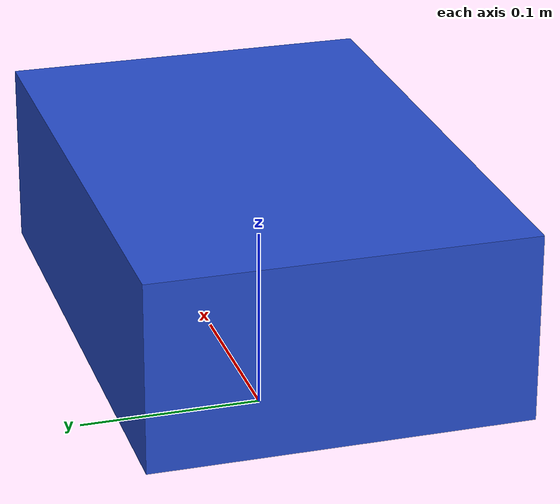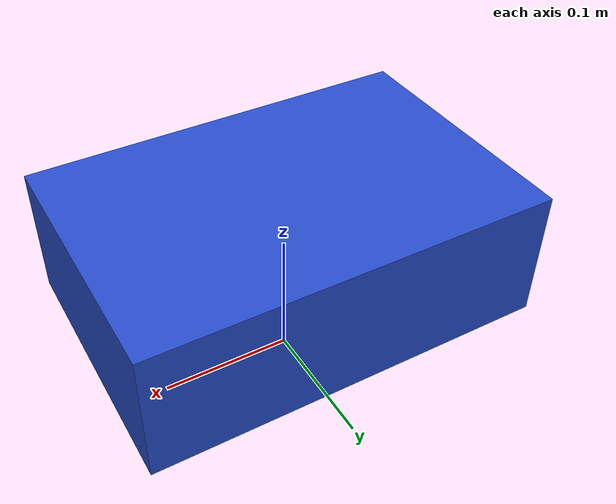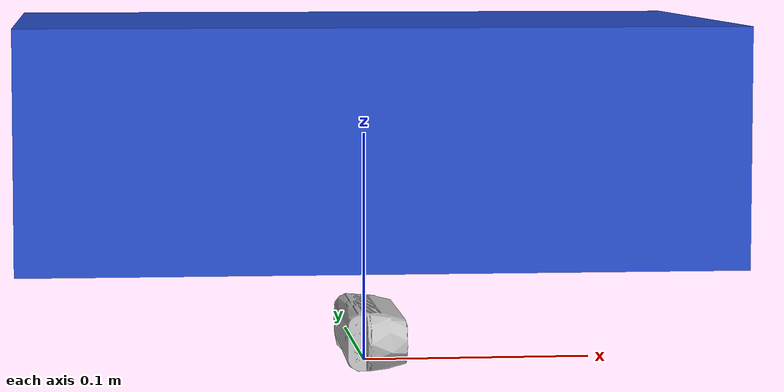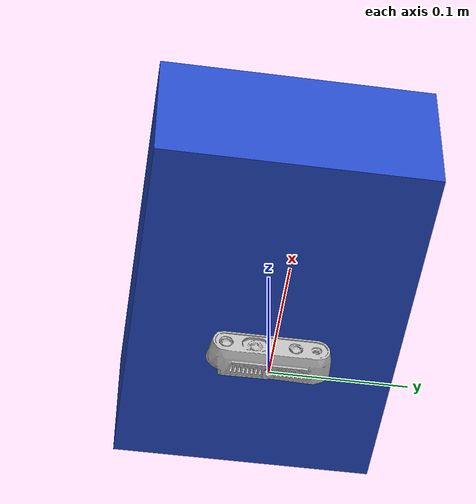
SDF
<sdf version='1.7'>
  <model name='glide'>
    <link name='base_link'>
      <inertial>
        <pose>0.0106 0.0175 0.0125 0 -0 0</pose>
        <mass>0.072</mass>
        <inertia>
          <ixx>0.00388124</ixx>
          <ixy>-6.02561e-22</ixy>
          <ixz>7.42861e-22</ixz>
          <iyy>0.00049894</iyy>
          <iyz>1.11391e-21</iyz>
          <izz>0.00387926</izz>
        </inertia>
      </inertial>
      <collision name='base_link_fixed_joint_lump__camera_link_collision'>
        <pose>0.0106 0 0.0125 0 -0 0</pose>
        <geometry>
          <box>
            <size>0.02505 0.09 0.025</size>
          </box>
        </geometry>
      </collision>
      <visual name='base_link_visual'>
        <pose>0 0 0.1 0 -0 0</pose>
        <geometry>
          <box>
            <size>0.3 0.2 0.1</size>
          </box>
        </geometry>
        <material>
          <script>
            <name>Gazebo/Blue</name>
            <uri>file://media/materials/scripts/gazebo.material</uri>
          </script>
        </material>
      </visual>
      <visual name='base_link_fixed_joint_lump__camera_link_visual_1'>
        <pose>0.0149 0 0.0125 1.5708 -0 1.5708</pose>
        <geometry>
          <mesh>
            <scale>1 1 1</scale>
            <uri>model://realsense2_description/meshes/d435.dae</uri>
          </mesh>
        </geometry>
      </visual>
    </link>
  </model>
</sdf>
